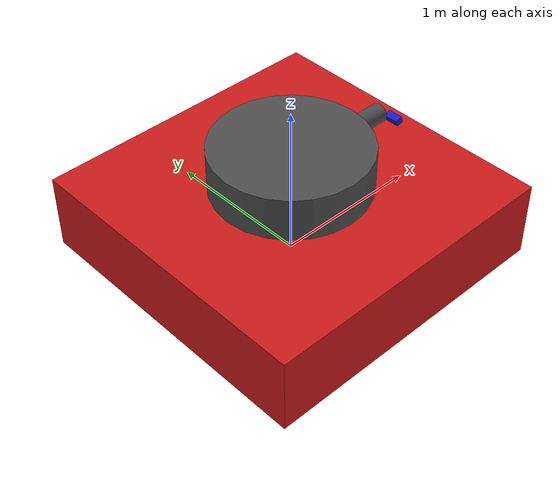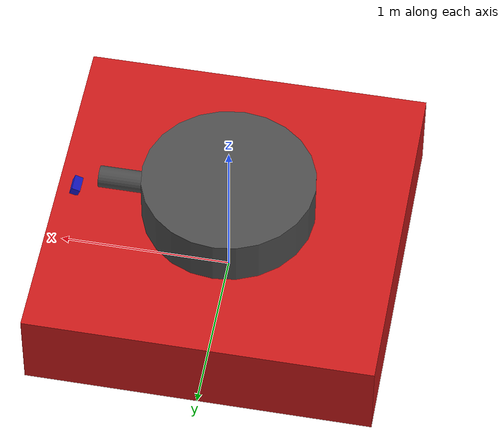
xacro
<?xml version="1.0"?>
<robot name="lws"
    xmlns:xacro="http://www.ros.org/wiki/xacro">

    <xacro:include filename="$(find lws_description)/urdf/common_properties.xacro" />
    <xacro:include filename="$(find lws_description)/urdf/lws_base.xacro" />
    <xacro:include filename="$(find lws_description)/urdf/lws_base_gz.xacro" />
    <xacro:include filename="$(find lws_description)/urdf/camera.xacro" />

</robot>

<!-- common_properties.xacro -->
<robot xmlns:xacro="http://www.ros.org/wiki/xacro">

    <material name="steel_gray">
        <color rgba="0.7 0.7 0.7 1.0"/>
    </material>

    <material name="dark_gray">
      <color rgba="0.3 0.3 0.3 1.0"/>
    </material>

    <material name="black">
      <color rgba="0.1 0.1 0.1 1.0"/>
    </material>

    <material name="red">
      <color rgba="0.8 0.1 0.1 1.0"/>
    </material>

    <material name="blue">
      <color rgba="0.1 0.1 0.8 1.0"/>
    </material>

    <xacro:macro name="box_inertia" params="m x y z o_xyz o_rpy">
        <inertial>
            <mass value="${m}" />
            <origin xyz="${o_xyz}" rpy="${o_rpy}" />
            <inertia ixx="${(m/12) * (z*z + y*y)}" ixy="0" ixz="0"
                    iyy="${(m/12) * (x*x + z*z)}" iyz="0"
                    izz="${(m/12) * (x*x + y*y)}" />
        </inertial>
    </xacro:macro>

    <xacro:macro name="cylinder_inertia" params="m r l o_xyz o_rpy">
        <inertial>
            <mass value="${m}" />
            <origin xyz="${o_xyz}" rpy="${o_rpy}" />
            <inertia ixx="${(m/12) * (3*r*r + l*l)}" ixy="0" ixz="0"
                    iyy="${(m/12) * (3*r*r + l*l)}" iyz="0"
                    izz="${(m/2) * (r*r)}" />
        </inertial>
    </xacro:macro>

    <xacro:macro name="sphere_inertia" params="m r o_xyz o_rpy">
        <inertial>
            <mass value="${m}" />
            <origin xyz="${o_xyz}" rpy="${o_rpy}" />
            <inertia ixx="${(2/5) * m * r * r}" ixy="0" ixz="0"
                    iyy="${(2/5) * m * r * r}" iyz="0"
                    izz="${(2/5) * m * r * r}" />
        </inertial>
    </xacro:macro>

</robot>

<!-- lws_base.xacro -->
<robot name="lws"
    xmlns:xacro="http://www.ros.org/wiki/xacro">

    <xacro:property name="base_length" value="2" />
    <xacro:property name="base_width" value="2" />
    <xacro:property name="base_height" value="0.5" />
    <xacro:property name="turret_base_radius" value="${base_width / 4}" />
    <xacro:property name="turret_base_length" value="${base_height / 1.75}" />
    <xacro:property name="turret_head_radius" value="${turret_base_radius / 8}" />
    <xacro:property name="turret_head_length" value="${1.5 * turret_base_radius}" />

    <link name="base_link">
        <visual>
            <geometry>
                <box size="${base_length} ${base_width} ${base_height}"/>
            </geometry>
            <origin xyz="0 0 ${base_height / 2.0}" rpy="0 0 0" />
            <material name="red" />
        </visual>
        <collision>
            <geometry>
                <box size="${base_length} ${base_width} ${base_height}"/>
            </geometry>
            <origin xyz="0 0 ${base_height / 2.0}" rpy="0 0 0" />
        </collision>
        <xacro:box_inertia m="50.0" x="${base_length}" y="${base_width}" z="${base_height}"
                           o_xyz="0 0 0" o_rpy="0 0 0" />
    </link>

    <link name="turret_base_link">
        <visual>
            <geometry>
                <cylinder radius="${turret_base_radius}" length="${turret_base_length}"/>
            </geometry>
            <origin xyz="0 0 0" rpy="0 0 0" />
            <material name="dark_gray" />
        </visual>
        <xacro:cylinder_inertia m="12.5" r="${turret_base_radius}" l="${turret_base_length}"
                                    o_xyz="0 0 0" o_rpy="0 0 0" />

    </link>

    <joint name="base_turret_base_joint" type="revolute">
        <parent link="base_link"/>
        <child link="turret_base_link"/>
        <origin xyz="0 0 ${base_height + turret_base_length / 2.0}" rpy="0 0 ${- pi / 4.0}"/>
        <axis xyz="0 0 1"/>
        <limit
            lower="${-40 * pi / 180.0}"
            upper="${40 * pi / 180.0}"
            effort="10.0"
            velocity="1.0"/>
        <dynamics damping="0.7" friction="0.0"/>
    </joint>

    <link name="turret_head_link">
        <visual>
            <geometry>
                <cylinder radius="${turret_head_radius}" length="${turret_head_length}"/>
            </geometry>
            <origin xyz="0 0 ${turret_head_length / 2.0}" rpy="0 0 0" />
            <material name="dark_gray" />
        </visual>
        <xacro:cylinder_inertia m="6.25" r="${turret_head_radius}" l="${turret_head_radius}"
                                    o_xyz="0 0 0" o_rpy="0 0 0" />

    </link>

    <joint name="base_turret_head_joint" type="revolute">
        <parent link="turret_base_link"/>
        <child link="turret_head_link"/>
        <origin xyz="0 0 0" rpy="0 ${pi / 2.0} ${pi / 4.0}"/>
        <axis xyz="0 1 0"/>
        <limit
            lower="${-45 * pi / 180.0}"
            upper="0"
            effort="10.0"
            velocity="1.0"/>
        <dynamics damping="0.7" friction="0.0"/>
    </joint>

</robot>

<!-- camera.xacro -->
<robot xmlns:xacro="http://www.ros.org/wiki/xacro">

    <xacro:property name="camera_length" value="0.05" />
    <xacro:property name="camera_width" value="0.1" />
    <xacro:property name="camera_height" value="0.05" />

    <xacro:property name="camera_fov_horizontal_deg" value="80" />
    <xacro:property name="camera_fov_vertical_deg" value="45" />

    <!-- Convert to radians -->
    <xacro:property name="camera_fov_horizontal_rad" value="${camera_fov_horizontal_deg * pi / 180.0}" />
    <xacro:property name="camera_aspect_ratio" value="${tan((camera_fov_vertical_deg * pi / 180.0) / 2.0) / tan((camera_fov_horizontal_deg * pi / 180.0) / 2.0)}" />
    <xacro:property name="camera_image_width" value="640" />
    <xacro:property name="camera_image_height" value="${round(camera_image_width * camera_aspect_ratio)}" />

    <link name="camera_link">
        <visual>
            <geometry>
                <box size="${camera_length} ${camera_width} ${camera_height}" />
            </geometry>
            <material name="blue" />
        </visual>
        <collision>
            <geometry>
                <box size="${camera_length} ${camera_width} ${camera_height}" />
            </geometry>
        </collision>
        <xacro:box_inertia m="0.1" x="${camera_length}" y="${camera_width}" z="${camera_height}"
                           o_xyz="0 0 0" o_rpy="0 0 0" />
    </link>

    <joint name="base_camera_joint" type="fixed">
        <parent link="base_link" />
        <child link="camera_link" />
        <origin xyz="${(base_length + camera_length) / 2.0 - base_length / 15.0} 0 ${base_height + camera_height / 2.0}" rpy="0 ${-20 * pi / 180.0} 0" />
    </joint>

    <link name="camera_link_optical" />

    <joint name="camera_optical_joint" type="fixed">
        <origin xyz="0 0 0" rpy="${-pi/2} 0 ${-pi/2}"/>
        <parent link="camera_link"/>
        <child link="camera_link_optical"/>
    </joint>

    <gazebo reference="camera_link">
        <sensor name="camera" type="camera">
            <camera>
                <horizontal_fov>${camera_fov_horizontal_rad}</horizontal_fov>
                <image>
                    <width>${camera_image_width}</width>
                    <height>${camera_image_height}</height>
                    <format>R8G8B8</format>
                </image>
                <clip>
                    <near>0.1</near>
                    <far>15</far>
                </clip>
                <noise>
                    <type>gaussian</type>
                    <mean>0.0</mean>
                    <stddev>0.007</stddev>
                </noise>
                <optical_frame_id>camera_link_optical</optical_frame_id>
                <camera_info_topic>camera/camera_info</camera_info_topic>
            </camera>
            <always_on>1</always_on>
            <update_rate>20</update_rate>
            <visualize>true</visualize>
            <topic>camera/image_raw</topic>
        </sensor>
    </gazebo>

</robot>
